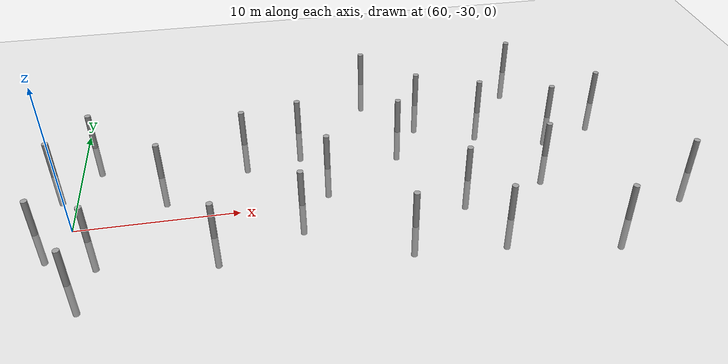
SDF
<sdf version="1.6">
 <world name="default">
  <model name="ground_plane">
   <static>1</static>
   <link name="link">
    <collision name="collision">
     <geometry><plane><normal>0 0 1</normal><size>100 100</size></plane></geometry>
     <surface><friction><ode><mu>100</mu><mu2>50</mu2></ode></friction></surface>
    </collision>
    <visual name="visual">
     <cast_shadows>0</cast_shadows>
     <geometry><plane><normal>0 0 1</normal><size>100 100</size></plane></geometry>
     <material>
      <script><uri>file://media/materials/scripts/gazebo.material</uri><name>Gazebo/Grey</name></script>
     </material>
    </visual>
   </link>
  </model>
  <model name="empty_pillars_10">
   <link name="link">
    <inertial>
     <mass>1</mass>
     <inertia><ixx>0.145833</ixx><ixy>0</ixy><ixz>0</ixz><iyy>0.145833</iyy><iyz>0</iyz><izz>0.125</izz></inertia>
    </inertial>
    <visual name="visual">
     <geometry><cylinder><radius>0.2</radius><length>5</length></cylinder></geometry>
     <material>
      <script><name>Gazebo/Grey</name><uri>file://media/materials/scripts/gazebo.material</uri></script>
      <shader type="vertex"><normal_map>__default__</normal_map></shader>
      <ambient>0.3 0.3 0.3 1</ambient>
      <diffuse>0.7 0.7 0.7 1</diffuse>
      <specular>0.01 0.01 0.01 1</specular>
      <emissive>0 0 0 1</emissive>
     </material>
    </visual>
    <collision name="collision">
     <geometry><cylinder><radius>0.05</radius><length>5</length></cylinder></geometry>
     <surface>
      <friction>
       <ode><mu>1</mu><mu2>1</mu2><fdir1>0 0 0</fdir1><slip1>0</slip1><slip2>0</slip2></ode>
       <torsional>
        <coefficient>1</coefficient>
        <patch_radius>0</patch_radius>
        <surface_radius>0</surface_radius>
        <use_patch_radius>1</use_patch_radius>
        <ode><slip>0</slip></ode>
       </torsional>
      </friction>
      <bounce><restitution_coefficient>0</restitution_coefficient><threshold>1e+06</threshold></bounce>
      <contact>
       <collide_without_contact>0</collide_without_contact>
       <collide_without_contact_bitmask>1</collide_without_contact_bitmask>
       <collide_bitmask>1</collide_bitmask>
       <ode>
        <soft_cfm>0</soft_cfm>
        <soft_erp>0.2</soft_erp>
        <kp>1e+13</kp>
        <kd>1</kd>
        <max_vel>0.01</max_vel>
        <min_depth>0</min_depth>
       </ode>
       <bullet>
        <split_impulse>1</split_impulse>
        <split_impulse_penetration_threshold>-0.01</split_impulse_penetration_threshold>
        <soft_cfm>0</soft_cfm>
        <soft_erp>0.2</soft_erp>
        <kp>1e+13</kp>
        <kd>1</kd>
       </bullet>
      </contact>
     </surface>
    </collision>
   </link>
   <model name="empty_pillar">
    <link name="link">
     <inertial>
      <mass>1</mass>
      <inertia><ixx>0.145833</ixx><ixy>0</ixy><ixz>0</ixz><iyy>0.145833</iyy><iyz>0</iyz><izz>0.125</izz></inertia>
     </inertial>
     <visual name="visual">
      <geometry><cylinder><radius>0.2</radius><length>5</length></cylinder></geometry>
      <material>
       <script><name>Gazebo/Grey</name><uri>file://media/materials/scripts/gazebo.material</uri></script>
       <shader type="vertex"><normal_map>__default__</normal_map></shader>
       <ambient>0.3 0.3 0.3 1</ambient>
       <diffuse>0.7 0.7 0.7 1</diffuse>
       <specular>0.01 0.01 0.01 1</specular>
       <emissive>0 0 0 1</emissive>
      </material>
     </visual>
     <collision name="collision">
      <geometry><cylinder><radius>0.05</radius><length>5</length></cylinder></geometry>
      <surface>
       <friction>
        <ode><mu>1</mu><mu2>1</mu2><fdir1>0 0 0</fdir1><slip1>0</slip1><slip2>0</slip2></ode>
        <torsional>
         <coefficient>1</coefficient>
         <patch_radius>0</patch_radius>
         <surface_radius>0</surface_radius>
         <use_patch_radius>1</use_patch_radius>
         <ode><slip>0</slip></ode>
        </torsional>
       </friction>
       <bounce><restitution_coefficient>0</restitution_coefficient><threshold>1e+06</threshold></bounce>
       <contact>
        <collide_without_contact>0</collide_without_contact>
        <collide_without_contact_bitmask>1</collide_without_contact_bitmask>
        <collide_bitmask>1</collide_bitmask>
        <ode>
         <soft_cfm>0</soft_cfm>
         <soft_erp>0.2</soft_erp>
         <kp>1e+13</kp>
         <kd>1</kd>
         <max_vel>0.01</max_vel>
         <min_depth>0</min_depth>
        </ode>
        <bullet>
         <split_impulse>1</split_impulse>
         <split_impulse_penetration_threshold>-0.01</split_impulse_penetration_threshold>
         <soft_cfm>0</soft_cfm>
         <soft_erp>0.2</soft_erp>
         <kp>1e+13</kp>
         <kd>1</kd>
        </bullet>
       </contact>
      </surface>
     </collision>
    </link>
    <static>0</static>
    <pose>-3.84527 -0.717439 0 0 -0 0</pose>
   </model>
   <model name="empty_pillar_clone">
    <link name="link">
     <inertial>
      <mass>1</mass>
      <inertia><ixx>0.145833</ixx><ixy>0</ixy><ixz>0</ixz><iyy>0.145833</iyy><iyz>0</iyz><izz>0.125</izz></inertia>
     </inertial>
     <visual name="visual">
      <geometry><cylinder><radius>0.2</radius><length>5</length></cylinder></geometry>
      <material>
       <script><name>Gazebo/Grey</name><uri>file://media/materials/scripts/gazebo.material</uri></script>
       <shader type="vertex"><normal_map>__default__</normal_map></shader>
       <ambient>0.3 0.3 0.3 1</ambient>
       <diffuse>0.7 0.7 0.7 1</diffuse>
       <specular>0.01 0.01 0.01 1</specular>
       <emissive>0 0 0 1</emissive>
      </material>
     </visual>
     <collision name="collision">
      <geometry><cylinder><radius>0.05</radius><length>5</length></cylinder></geometry>
      <surface>
       <friction>
        <ode><mu>1</mu><mu2>1</mu2><fdir1>0 0 0</fdir1><slip1>0</slip1><slip2>0</slip2></ode>
        <torsional>
         <coefficient>1</coefficient>
         <patch_radius>0</patch_radius>
         <surface_radius>0</surface_radius>
         <use_patch_radius>1</use_patch_radius>
         <ode><slip>0</slip></ode>
        </torsional>
       </friction>
       <bounce><restitution_coefficient>0</restitution_coefficient><threshold>1e+06</threshold></bounce>
       <contact>
        <collide_without_contact>0</collide_without_contact>
        <collide_without_contact_bitmask>1</collide_without_contact_bitmask>
        <collide_bitmask>1</collide_bitmask>
        <ode>
         <soft_cfm>0</soft_cfm>
         <soft_erp>0.2</soft_erp>
         <kp>1e+13</kp>
         <kd>1</kd>
         <max_vel>0.01</max_vel>
         <min_depth>0</min_depth>
        </ode>
        <bullet>
         <split_impulse>1</split_impulse>
         <split_impulse_penetration_threshold>-0.01</split_impulse_penetration_threshold>
         <soft_cfm>0</soft_cfm>
         <soft_erp>0.2</soft_erp>
         <kp>1e+13</kp>
         <kd>1</kd>
        </bullet>
       </contact>
      </surface>
     </collision>
    </link>
    <static>0</static>
    <pose>1.47843 -4.49529 0 0 -0 0</pose>
   </model>
   <model name="empty_pillar_clone_0">
    <link name="link">
     <inertial>
      <mass>1</mass>
      <inertia><ixx>0.145833</ixx><ixy>0</ixy><ixz>0</ixz><iyy>0.145833</iyy><iyz>0</iyz><izz>0.125</izz></inertia>
     </inertial>
     <visual name="visual">
      <geometry><cylinder><radius>0.2</radius><length>5</length></cylinder></geometry>
      <material>
       <script><name>Gazebo/Grey</name><uri>file://media/materials/scripts/gazebo.material</uri></script>
       <shader type="vertex"><normal_map>__default__</normal_map></shader>
       <ambient>0.3 0.3 0.3 1</ambient>
       <diffuse>0.7 0.7 0.7 1</diffuse>
       <specular>0.01 0.01 0.01 1</specular>
       <emissive>0 0 0 1</emissive>
      </material>
     </visual>
     <collision name="collision">
      <geometry><cylinder><radius>0.05</radius><length>5</length></cylinder></geometry>
      <surface>
       <friction>
        <ode><mu>1</mu><mu2>1</mu2><fdir1>0 0 0</fdir1><slip1>0</slip1><slip2>0</slip2></ode>
        <torsional>
         <coefficient>1</coefficient>
         <patch_radius>0</patch_radius>
         <surface_radius>0</surface_radius>
         <use_patch_radius>1</use_patch_radius>
         <ode><slip>0</slip></ode>
        </torsional>
       </friction>
       <bounce><restitution_coefficient>0</restitution_coefficient><threshold>1e+06</threshold></bounce>
       <contact>
        <collide_without_contact>0</collide_without_contact>
        <collide_without_contact_bitmask>1</collide_without_contact_bitmask>
        <collide_bitmask>1</collide_bitmask>
        <ode>
         <soft_cfm>0</soft_cfm>
         <soft_erp>0.2</soft_erp>
         <kp>1e+13</kp>
         <kd>1</kd>
         <max_vel>0.01</max_vel>
         <min_depth>0</min_depth>
        </ode>
        <bullet>
         <split_impulse>1</split_impulse>
         <split_impulse_penetration_threshold>-0.01</split_impulse_penetration_threshold>
         <soft_cfm>0</soft_cfm>
         <soft_erp>0.2</soft_erp>
         <kp>1e+13</kp>
         <kd>1</kd>
        </bullet>
       </contact>
      </surface>
     </collision>
    </link>
    <static>0</static>
    <pose>10.3453 -7.35986 0 0 -0 0</pose>
   </model>
   <model name="empty_pillar_clone_1">
    <link name="link">
     <inertial>
      <mass>1</mass>
      <inertia><ixx>0.145833</ixx><ixy>0</ixy><ixz>0</ixz><iyy>0.145833</iyy><iyz>0</iyz><izz>0.125</izz></inertia>
     </inertial>
     <visual name="visual">
      <geometry><cylinder><radius>0.2</radius><length>5</length></cylinder></geometry>
      <material>
       <script><name>Gazebo/Grey</name><uri>file://media/materials/scripts/gazebo.material</uri></script>
       <shader type="vertex"><normal_map>__default__</normal_map></shader>
       <ambient>0.3 0.3 0.3 1</ambient>
       <diffuse>0.7 0.7 0.7 1</diffuse>
       <specular>0.01 0.01 0.01 1</specular>
       <emissive>0 0 0 1</emissive>
      </material>
     </visual>
     <collision name="collision">
      <geometry><cylinder><radius>0.05</radius><length>5</length></cylinder></geometry>
      <surface>
       <friction>
        <ode><mu>1</mu><mu2>1</mu2><fdir1>0 0 0</fdir1><slip1>0</slip1><slip2>0</slip2></ode>
        <torsional>
         <coefficient>1</coefficient>
         <patch_radius>0</patch_radius>
         <surface_radius>0</surface_radius>
         <use_patch_radius>1</use_patch_radius>
         <ode><slip>0</slip></ode>
        </torsional>
       </friction>
       <bounce><restitution_coefficient>0</restitution_coefficient><threshold>1e+06</threshold></bounce>
       <contact>
        <collide_without_contact>0</collide_without_contact>
        <collide_without_contact_bitmask>1</collide_without_contact_bitmask>
        <collide_bitmask>1</collide_bitmask>
        <ode>
         <soft_cfm>0</soft_cfm>
         <soft_erp>0.2</soft_erp>
         <kp>1e+13</kp>
         <kd>1</kd>
         <max_vel>0.01</max_vel>
         <min_depth>0</min_depth>
        </ode>
        <bullet>
         <split_impulse>1</split_impulse>
         <split_impulse_penetration_threshold>-0.01</split_impulse_penetration_threshold>
         <soft_cfm>0</soft_cfm>
         <soft_erp>0.2</soft_erp>
         <kp>1e+13</kp>
         <kd>1</kd>
        </bullet>
       </contact>
      </surface>
     </collision>
    </link>
    <static>0</static>
    <pose>8.92248 2.14838 0 0 -0 0</pose>
   </model>
   <model name="empty_pillar_clone_14">
    <link name="link">
     <inertial>
      <mass>1</mass>
      <inertia><ixx>0.145833</ixx><ixy>0</ixy><ixz>0</ixz><iyy>0.145833</iyy><iyz>0</iyz><izz>0.125</izz></inertia>
     </inertial>
     <visual name="visual">
      <geometry><cylinder><radius>0.2</radius><length>5</length></cylinder></geometry>
      <material>
       <script><name>Gazebo/Grey</name><uri>file://media/materials/scripts/gazebo.material</uri></script>
       <shader type="vertex"><normal_map>__default__</normal_map></shader>
       <ambient>0.3 0.3 0.3 1</ambient>
       <diffuse>0.7 0.7 0.7 1</diffuse>
       <specular>0.01 0.01 0.01 1</specular>
       <emissive>0 0 0 1</emissive>
      </material>
     </visual>
     <collision name="collision">
      <geometry><cylinder><radius>0.05</radius><length>5</length></cylinder></geometry>
      <surface>
       <friction>
        <ode><mu>1</mu><mu2>1</mu2><fdir1>0 0 0</fdir1><slip1>0</slip1><slip2>0</slip2></ode>
        <torsional>
         <coefficient>1</coefficient>
         <patch_radius>0</patch_radius>
         <surface_radius>0</surface_radius>
         <use_patch_radius>1</use_patch_radius>
         <ode><slip>0</slip></ode>
        </torsional>
       </friction>
       <bounce><restitution_coefficient>0</restitution_coefficient><threshold>1e+06</threshold></bounce>
       <contact>
        <collide_without_contact>0</collide_without_contact>
        <collide_without_contact_bitmask>1</collide_without_contact_bitmask>
        <collide_bitmask>1</collide_bitmask>
        <ode>
         <soft_cfm>0</soft_cfm>
         <soft_erp>0.2</soft_erp>
         <kp>1e+13</kp>
         <kd>1</kd>
         <max_vel>0.01</max_vel>
         <min_depth>0</min_depth>
        </ode>
        <bullet>
         <split_impulse>1</split_impulse>
         <split_impulse_penetration_threshold>-0.01</split_impulse_penetration_threshold>
         <soft_cfm>0</soft_cfm>
         <soft_erp>0.2</soft_erp>
         <kp>1e+13</kp>
         <kd>1</kd>
        </bullet>
       </contact>
      </surface>
     </collision>
    </link>
    <static>0</static>
    <pose>-14.0146 0.646152 0 0 -0 0</pose>
   </model>
   <model name="empty_pillar_clone_15">
    <link name="link">
     <inertial>
      <mass>1</mass>
      <inertia><ixx>0.145833</ixx><ixy>0</ixy><ixz>0</ixz><iyy>0.145833</iyy><iyz>0</iyz><izz>0.125</izz></inertia>
     </inertial>
     <visual name="visual">
      <geometry><cylinder><radius>0.2</radius><length>5</length></cylinder></geometry>
      <material>
       <script><name>Gazebo/Grey</name><uri>file://media/materials/scripts/gazebo.material</uri></script>
       <shader type="vertex"><normal_map>__default__</normal_map></shader>
       <ambient>0.3 0.3 0.3 1</ambient>
       <diffuse>0.7 0.7 0.7 1</diffuse>
       <specular>0.01 0.01 0.01 1</specular>
       <emissive>0 0 0 1</emissive>
      </material>
     </visual>
     <collision name="collision">
      <geometry><cylinder><radius>0.05</radius><length>5</length></cylinder></geometry>
      <surface>
       <friction>
        <ode><mu>1</mu><mu2>1</mu2><fdir1>0 0 0</fdir1><slip1>0</slip1><slip2>0</slip2></ode>
        <torsional>
         <coefficient>1</coefficient>
         <patch_radius>0</patch_radius>
         <surface_radius>0</surface_radius>
         <use_patch_radius>1</use_patch_radius>
         <ode><slip>0</slip></ode>
        </torsional>
       </friction>
       <bounce><restitution_coefficient>0</restitution_coefficient><threshold>1e+06</threshold></bounce>
       <contact>
        <collide_without_contact>0</collide_without_contact>
        <collide_without_contact_bitmask>1</collide_without_contact_bitmask>
        <collide_bitmask>1</collide_bitmask>
        <ode>
         <soft_cfm>0</soft_cfm>
         <soft_erp>0.2</soft_erp>
         <kp>1e+13</kp>
         <kd>1</kd>
         <max_vel>0.01</max_vel>
         <min_depth>0</min_depth>
        </ode>
        <bullet>
         <split_impulse>1</split_impulse>
         <split_impulse_penetration_threshold>-0.01</split_impulse_penetration_threshold>
         <soft_cfm>0</soft_cfm>
         <soft_erp>0.2</soft_erp>
         <kp>1e+13</kp>
         <kd>1</kd>
        </bullet>
       </contact>
      </surface>
     </collision>
    </link>
    <static>0</static>
    <pose>-9.37193 -3.58732 0 0 -0 0</pose>
   </model>
   <model name="empty_pillar_clone_2">
    <link name="link">
     <inertial>
      <mass>1</mass>
      <inertia><ixx>0.145833</ixx><ixy>0</ixy><ixz>0</ixz><iyy>0.145833</iyy><iyz>0</iyz><izz>0.125</izz></inertia>
     </inertial>
     <visual name="visual">
      <geometry><cylinder><radius>0.2</radius><length>5</length></cylinder></geometry>
      <material>
       <script><name>Gazebo/Grey</name><uri>file://media/materials/scripts/gazebo.material</uri></script>
       <shader type="vertex"><normal_map>__default__</normal_map></shader>
       <ambient>0.3 0.3 0.3 1</ambient>
       <diffuse>0.7 0.7 0.7 1</diffuse>
       <specular>0.01 0.01 0.01 1</specular>
       <emissive>0 0 0 1</emissive>
      </material>
     </visual>
     <collision name="collision">
      <geometry><cylinder><radius>0.05</radius><length>5</length></cylinder></geometry>
      <surface>
       <friction>
        <ode><mu>1</mu><mu2>1</mu2><fdir1>0 0 0</fdir1><slip1>0</slip1><slip2>0</slip2></ode>
        <torsional>
         <coefficient>1</coefficient>
         <patch_radius>0</patch_radius>
         <surface_radius>0</surface_radius>
         <use_patch_radius>1</use_patch_radius>
         <ode><slip>0</slip></ode>
        </torsional>
       </friction>
       <bounce><restitution_coefficient>0</restitution_coefficient><threshold>1e+06</threshold></bounce>
       <contact>
        <collide_without_contact>0</collide_without_contact>
        <collide_without_contact_bitmask>1</collide_without_contact_bitmask>
        <collide_bitmask>1</collide_bitmask>
        <ode>
         <soft_cfm>0</soft_cfm>
         <soft_erp>0.2</soft_erp>
         <kp>1e+13</kp>
         <kd>1</kd>
         <max_vel>0.01</max_vel>
         <min_depth>0</min_depth>
        </ode>
        <bullet>
         <split_impulse>1</split_impulse>
         <split_impulse_penetration_threshold>-0.01</split_impulse_penetration_threshold>
         <soft_cfm>0</soft_cfm>
         <soft_erp>0.2</soft_erp>
         <kp>1e+13</kp>
         <kd>1</kd>
        </bullet>
       </contact>
      </surface>
     </collision>
    </link>
    <static>0</static>
    <pose>6.92427 -1.06221 0 0 -0 0</pose>
   </model>
   <model name="empty_pillar_clone_3">
    <link name="link">
     <inertial>
      <mass>1</mass>
      <inertia><ixx>0.145833</ixx><ixy>0</ixy><ixz>0</ixz><iyy>0.145833</iyy><iyz>0</iyz><izz>0.125</izz></inertia>
     </inertial>
     <visual name="visual">
      <geometry><cylinder><radius>0.2</radius><length>5</length></cylinder></geometry>
      <material>
       <script><name>Gazebo/Grey</name><uri>file://media/materials/scripts/gazebo.material</uri></script>
       <shader type="vertex"><normal_map>__default__</normal_map></shader>
       <ambient>0.3 0.3 0.3 1</ambient>
       <diffuse>0.7 0.7 0.7 1</diffuse>
       <specular>0.01 0.01 0.01 1</specular>
       <emissive>0 0 0 1</emissive>
      </material>
     </visual>
     <collision name="collision">
      <geometry><cylinder><radius>0.05</radius><length>5</length></cylinder></geometry>
      <surface>
       <friction>
        <ode><mu>1</mu><mu2>1</mu2><fdir1>0 0 0</fdir1><slip1>0</slip1><slip2>0</slip2></ode>
        <torsional>
         <coefficient>1</coefficient>
         <patch_radius>0</patch_radius>
         <surface_radius>0</surface_radius>
         <use_patch_radius>1</use_patch_radius>
         <ode><slip>0</slip></ode>
        </torsional>
       </friction>
       <bounce><restitution_coefficient>0</restitution_coefficient><threshold>1e+06</threshold></bounce>
       <contact>
        <collide_without_contact>0</collide_without_contact>
        <collide_without_contact_bitmask>1</collide_without_contact_bitmask>
        <collide_bitmask>1</collide_bitmask>
        <ode>
         <soft_cfm>0</soft_cfm>
         <soft_erp>0.2</soft_erp>
         <kp>1e+13</kp>
         <kd>1</kd>
         <max_vel>0.01</max_vel>
         <min_depth>0</min_depth>
        </ode>
        <bullet>
         <split_impulse>1</split_impulse>
         <split_impulse_penetration_threshold>-0.01</split_impulse_penetration_threshold>
         <soft_cfm>0</soft_cfm>
         <soft_erp>0.2</soft_erp>
         <kp>1e+13</kp>
         <kd>1</kd>
        </bullet>
       </contact>
      </surface>
     </collision>
    </link>
    <static>0</static>
    <pose>5.99316 -11.2211 0 0 -0 0</pose>
   </model>
   <model name="empty_pillar_clone_32">
    <link name="link">
     <inertial>
      <mass>1</mass>
      <inertia><ixx>0.145833</ixx><ixy>0</ixy><ixz>0</ixz><iyy>0.145833</iyy><iyz>0</iyz><izz>0.125</izz></inertia>
     </inertial>
     <visual name="visual">
      <geometry><cylinder><radius>0.2</radius><length>5</length></cylinder></geometry>
      <material>
       <script><name>Gazebo/Grey</name><uri>file://media/materials/scripts/gazebo.material</uri></script>
       <shader type="vertex"><normal_map>__default__</normal_map></shader>
       <ambient>0.3 0.3 0.3 1</ambient>
       <diffuse>0.7 0.7 0.7 1</diffuse>
       <specular>0.01 0.01 0.01 1</specular>
       <emissive>0 0 0 1</emissive>
      </material>
     </visual>
     <collision name="collision">
      <geometry><cylinder><radius>0.05</radius><length>5</length></cylinder></geometry>
      <surface>
       <friction>
        <ode><mu>1</mu><mu2>1</mu2><fdir1>0 0 0</fdir1><slip1>0</slip1><slip2>0</slip2></ode>
        <torsional>
         <coefficient>1</coefficient>
         <patch_radius>0</patch_radius>
         <surface_radius>0</surface_radius>
         <use_patch_radius>1</use_patch_radius>
         <ode><slip>0</slip></ode>
        </torsional>
       </friction>
       <bounce><restitution_coefficient>0</restitution_coefficient><threshold>1e+06</threshold></bounce>
       <contact>
        <collide_without_contact>0</collide_without_contact>
        <collide_without_contact_bitmask>1</collide_without_contact_bitmask>
        <collide_bitmask>1</collide_bitmask>
        <ode>
         <soft_cfm>0</soft_cfm>
         <soft_erp>0.2</soft_erp>
         <kp>1e+13</kp>
         <kd>1</kd>
         <max_vel>0.01</max_vel>
         <min_depth>0</min_depth>
        </ode>
        <bullet>
         <split_impulse>1</split_impulse>
         <split_impulse_penetration_threshold>-0.01</split_impulse_penetration_threshold>
         <soft_cfm>0</soft_cfm>
         <soft_erp>0.2</soft_erp>
         <kp>1e+13</kp>
         <kd>1</kd>
        </bullet>
       </contact>
      </surface>
     </collision>
    </link>
    <static>0</static>
    <pose>21.9854 0.15966 0 0 -0 0</pose>
   </model>
   <model name="empty_pillar_clone_37">
    <link name="link">
     <inertial>
      <mass>1</mass>
      <inertia><ixx>0.145833</ixx><ixy>0</ixy><ixz>0</ixz><iyy>0.145833</iyy><iyz>0</iyz><izz>0.125</izz></inertia>
     </inertial>
     <visual name="visual">
      <geometry><cylinder><radius>0.2</radius><length>5</length></cylinder></geometry>
      <material>
       <script><name>Gazebo/Grey</name><uri>file://media/materials/scripts/gazebo.material</uri></script>
       <shader type="vertex"><normal_map>__default__</normal_map></shader>
       <ambient>0.3 0.3 0.3 1</ambient>
       <diffuse>0.7 0.7 0.7 1</diffuse>
       <specular>0.01 0.01 0.01 1</specular>
       <emissive>0 0 0 1</emissive>
      </material>
     </visual>
     <collision name="collision">
      <geometry><cylinder><radius>0.05</radius><length>5</length></cylinder></geometry>
      <surface>
       <friction>
        <ode><mu>1</mu><mu2>1</mu2><fdir1>0 0 0</fdir1><slip1>0</slip1><slip2>0</slip2></ode>
        <torsional>
         <coefficient>1</coefficient>
         <patch_radius>0</patch_radius>
         <surface_radius>0</surface_radius>
         <use_patch_radius>1</use_patch_radius>
         <ode><slip>0</slip></ode>
        </torsional>
       </friction>
       <bounce><restitution_coefficient>0</restitution_coefficient><threshold>1e+06</threshold></bounce>
       <contact>
        <collide_without_contact>0</collide_without_contact>
        <collide_without_contact_bitmask>1</collide_without_contact_bitmask>
        <collide_bitmask>1</collide_bitmask>
        <ode>
         <soft_cfm>0</soft_cfm>
         <soft_erp>0.2</soft_erp>
         <kp>1e+13</kp>
         <kd>1</kd>
         <max_vel>0.01</max_vel>
         <min_depth>0</min_depth>
        </ode>
        <bullet>
         <split_impulse>1</split_impulse>
         <split_impulse_penetration_threshold>-0.01</split_impulse_penetration_threshold>
         <soft_cfm>0</soft_cfm>
         <soft_erp>0.2</soft_erp>
         <kp>1e+13</kp>
         <kd>1</kd>
        </bullet>
       </contact>
      </surface>
     </collision>
    </link>
    <static>0</static>
    <pose>-16.6035 -7.98282 0 0 -0 0</pose>
   </model>
   <model name="empty_pillar_clone_38">
    <link name="link">
     <inertial>
      <mass>1</mass>
      <inertia><ixx>0.145833</ixx><ixy>0</ixy><ixz>0</ixz><iyy>0.145833</iyy><iyz>0</iyz><izz>0.125</izz></inertia>
     </inertial>
     <visual name="visual">
      <geometry><cylinder><radius>0.2</radius><length>5</length></cylinder></geometry>
      <material>
       <script><name>Gazebo/Grey</name><uri>file://media/materials/scripts/gazebo.material</uri></script>
       <shader type="vertex"><normal_map>__default__</normal_map></shader>
       <ambient>0.3 0.3 0.3 1</ambient>
       <diffuse>0.7 0.7 0.7 1</diffuse>
       <specular>0.01 0.01 0.01 1</specular>
       <emissive>0 0 0 1</emissive>
      </material>
     </visual>
     <collision name="collision">
      <geometry><cylinder><radius>0.05</radius><length>5</length></cylinder></geometry>
      <surface>
       <friction>
        <ode><mu>1</mu><mu2>1</mu2><fdir1>0 0 0</fdir1><slip1>0</slip1><slip2>0</slip2></ode>
        <torsional>
         <coefficient>1</coefficient>
         <patch_radius>0</patch_radius>
         <surface_radius>0</surface_radius>
         <use_patch_radius>1</use_patch_radius>
         <ode><slip>0</slip></ode>
        </torsional>
       </friction>
       <bounce><restitution_coefficient>0</restitution_coefficient><threshold>1e+06</threshold></bounce>
       <contact>
        <collide_without_contact>0</collide_without_contact>
        <collide_without_contact_bitmask>1</collide_without_contact_bitmask>
        <collide_bitmask>1</collide_bitmask>
        <ode>
         <soft_cfm>0</soft_cfm>
         <soft_erp>0.2</soft_erp>
         <kp>1e+13</kp>
         <kd>1</kd>
         <max_vel>0.01</max_vel>
         <min_depth>0</min_depth>
        </ode>
        <bullet>
         <split_impulse>1</split_impulse>
         <split_impulse_penetration_threshold>-0.01</split_impulse_penetration_threshold>
         <soft_cfm>0</soft_cfm>
         <soft_erp>0.2</soft_erp>
         <kp>1e+13</kp>
         <kd>1</kd>
        </bullet>
       </contact>
      </surface>
     </collision>
    </link>
    <static>0</static>
    <pose>-16.33 -2.21607 0 0 -0 0</pose>
   </model>
   <model name="empty_pillar_clone_39">
    <link name="link">
     <inertial>
      <mass>1</mass>
      <inertia><ixx>0.145833</ixx><ixy>0</ixy><ixz>0</ixz><iyy>0.145833</iyy><iyz>0</iyz><izz>0.125</izz></inertia>
     </inertial>
     <visual name="visual">
      <geometry><cylinder><radius>0.2</radius><length>5</length></cylinder></geometry>
      <material>
       <script><name>Gazebo/Grey</name><uri>file://media/materials/scripts/gazebo.material</uri></script>
       <shader type="vertex"><normal_map>__default__</normal_map></shader>
       <ambient>0.3 0.3 0.3 1</ambient>
       <diffuse>0.7 0.7 0.7 1</diffuse>
       <specular>0.01 0.01 0.01 1</specular>
       <emissive>0 0 0 1</emissive>
      </material>
     </visual>
     <collision name="collision">
      <geometry><cylinder><radius>0.05</radius><length>5</length></cylinder></geometry>
      <surface>
       <friction>
        <ode><mu>1</mu><mu2>1</mu2><fdir1>0 0 0</fdir1><slip1>0</slip1><slip2>0</slip2></ode>
        <torsional>
         <coefficient>1</coefficient>
         <patch_radius>0</patch_radius>
         <surface_radius>0</surface_radius>
         <use_patch_radius>1</use_patch_radius>
         <ode><slip>0</slip></ode>
        </torsional>
       </friction>
       <bounce><restitution_coefficient>0</restitution_coefficient><threshold>1e+06</threshold></bounce>
       <contact>
        <collide_without_contact>0</collide_without_contact>
        <collide_without_contact_bitmask>1</collide_without_contact_bitmask>
        <collide_bitmask>1</collide_bitmask>
        <ode>
         <soft_cfm>0</soft_cfm>
         <soft_erp>0.2</soft_erp>
         <kp>1e+13</kp>
         <kd>1</kd>
         <max_vel>0.01</max_vel>
         <min_depth>0</min_depth>
        </ode>
        <bullet>
         <split_impulse>1</split_impulse>
         <split_impulse_penetration_threshold>-0.01</split_impulse_penetration_threshold>
         <soft_cfm>0</soft_cfm>
         <soft_erp>0.2</soft_erp>
         <kp>1e+13</kp>
         <kd>1</kd>
        </bullet>
       </contact>
      </surface>
     </collision>
    </link>
    <static>0</static>
    <pose>-13.4361 -9.12638 0 0 -0 0</pose>
   </model>
   <model name="empty_pillar_clone_41">
    <link name="link">
     <inertial>
      <mass>1</mass>
      <inertia><ixx>0.145833</ixx><ixy>0</ixy><ixz>0</ixz><iyy>0.145833</iyy><iyz>0</iyz><izz>0.125</izz></inertia>
     </inertial>
     <visual name="visual">
      <geometry><cylinder><radius>0.2</radius><length>5</length></cylinder></geometry>
      <material>
       <script><name>Gazebo/Grey</name><uri>file://media/materials/scripts/gazebo.material</uri></script>
       <shader type="vertex"><normal_map>__default__</normal_map></shader>
       <ambient>0.3 0.3 0.3 1</ambient>
       <diffuse>0.7 0.7 0.7 1</diffuse>
       <specular>0.01 0.01 0.01 1</specular>
       <emissive>0 0 0 1</emissive>
      </material>
     </visual>
     <collision name="collision">
      <geometry><cylinder><radius>0.05</radius><length>5</length></cylinder></geometry>
      <surface>
       <friction>
        <ode><mu>1</mu><mu2>1</mu2><fdir1>0 0 0</fdir1><slip1>0</slip1><slip2>0</slip2></ode>
        <torsional>
         <coefficient>1</coefficient>
         <patch_radius>0</patch_radius>
         <surface_radius>0</surface_radius>
         <use_patch_radius>1</use_patch_radius>
         <ode><slip>0</slip></ode>
        </torsional>
       </friction>
       <bounce><restitution_coefficient>0</restitution_coefficient><threshold>1e+06</threshold></bounce>
       <contact>
        <collide_without_contact>0</collide_without_contact>
        <collide_without_contact_bitmask>1</collide_without_contact_bitmask>
        <collide_bitmask>1</collide_bitmask>
        <ode>
         <soft_cfm>0</soft_cfm>
         <soft_erp>0.2</soft_erp>
         <kp>1e+13</kp>
         <kd>1</kd>
         <max_vel>0.01</max_vel>
         <min_depth>0</min_depth>
        </ode>
        <bullet>
         <split_impulse>1</split_impulse>
         <split_impulse_penetration_threshold>-0.01</split_impulse_penetration_threshold>
         <soft_cfm>0</soft_cfm>
         <soft_erp>0.2</soft_erp>
         <kp>1e+13</kp>
         <kd>1</kd>
        </bullet>
       </contact>
      </surface>
     </collision>
    </link>
    <static>0</static>
    <pose>-14.1448 -12.6326 0 0 -0 0</pose>
   </model>
   <model name="empty_pillar_clone_47">
    <link name="link">
     <inertial>
      <mass>1</mass>
      <inertia><ixx>0.145833</ixx><ixy>0</ixy><ixz>0</ixz><iyy>0.145833</iyy><iyz>0</iyz><izz>0.125</izz></inertia>
     </inertial>
     <visual name="visual">
      <geometry><cylinder><radius>0.2</radius><length>5</length></cylinder></geometry>
      <material>
       <script><name>Gazebo/Grey</name><uri>file://media/materials/scripts/gazebo.material</uri></script>
       <shader type="vertex"><normal_map>__default__</normal_map></shader>
       <ambient>0.3 0.3 0.3 1</ambient>
       <diffuse>0.7 0.7 0.7 1</diffuse>
       <specular>0.01 0.01 0.01 1</specular>
       <emissive>0 0 0 1</emissive>
      </material>
     </visual>
     <collision name="collision">
      <geometry><cylinder><radius>0.05</radius><length>5</length></cylinder></geometry>
      <surface>
       <friction>
        <ode><mu>1</mu><mu2>1</mu2><fdir1>0 0 0</fdir1><slip1>0</slip1><slip2>0</slip2></ode>
        <torsional>
         <coefficient>1</coefficient>
         <patch_radius>0</patch_radius>
         <surface_radius>0</surface_radius>
         <use_patch_radius>1</use_patch_radius>
         <ode><slip>0</slip></ode>
        </torsional>
       </friction>
       <bounce><restitution_coefficient>0</restitution_coefficient><threshold>1e+06</threshold></bounce>
       <contact>
        <collide_without_contact>0</collide_without_contact>
        <collide_without_contact_bitmask>1</collide_without_contact_bitmask>
        <collide_bitmask>1</collide_bitmask>
        <ode>
         <soft_cfm>0</soft_cfm>
         <soft_erp>0.2</soft_erp>
         <kp>1e+13</kp>
         <kd>1</kd>
         <max_vel>0.01</max_vel>
         <min_depth>0</min_depth>
        </ode>
        <bullet>
         <split_impulse>1</split_impulse>
         <split_impulse_penetration_threshold>-0.01</split_impulse_penetration_threshold>
         <soft_cfm>0</soft_cfm>
         <soft_erp>0.2</soft_erp>
         <kp>1e+13</kp>
         <kd>1</kd>
        </bullet>
       </contact>
      </surface>
     </collision>
    </link>
    <static>0</static>
    <pose>-0.569433 -7.97346 0 0 -0 0</pose>
   </model>
   <model name="empty_pillar_clone_48">
    <link name="link">
     <inertial>
      <mass>1</mass>
      <inertia><ixx>0.145833</ixx><ixy>0</ixy><ixz>0</ixz><iyy>0.145833</iyy><iyz>0</iyz><izz>0.125</izz></inertia>
     </inertial>
     <visual name="visual">
      <geometry><cylinder><radius>0.2</radius><length>5</length></cylinder></geometry>
      <material>
       <script><name>Gazebo/Grey</name><uri>file://media/materials/scripts/gazebo.material</uri></script>
       <shader type="vertex"><normal_map>__default__</normal_map></shader>
       <ambient>0.3 0.3 0.3 1</ambient>
       <diffuse>0.7 0.7 0.7 1</diffuse>
       <specular>0.01 0.01 0.01 1</specular>
       <emissive>0 0 0 1</emissive>
      </material>
     </visual>
     <collision name="collision">
      <geometry><cylinder><radius>0.05</radius><length>5</length></cylinder></geometry>
      <surface>
       <friction>
        <ode><mu>1</mu><mu2>1</mu2><fdir1>0 0 0</fdir1><slip1>0</slip1><slip2>0</slip2></ode>
        <torsional>
         <coefficient>1</coefficient>
         <patch_radius>0</patch_radius>
         <surface_radius>0</surface_radius>
         <use_patch_radius>1</use_patch_radius>
         <ode><slip>0</slip></ode>
        </torsional>
       </friction>
       <bounce><restitution_coefficient>0</restitution_coefficient><threshold>1e+06</threshold></bounce>
       <contact>
        <collide_without_contact>0</collide_without_contact>
        <collide_without_contact_bitmask>1</collide_without_contact_bitmask>
        <collide_bitmask>1</collide_bitmask>
        <ode>
         <soft_cfm>0</soft_cfm>
         <soft_erp>0.2</soft_erp>
         <kp>1e+13</kp>
         <kd>1</kd>
         <max_vel>0.01</max_vel>
         <min_depth>0</min_depth>
        </ode>
        <bullet>
         <split_impulse>1</split_impulse>
         <split_impulse_penetration_threshold>-0.01</split_impulse_penetration_threshold>
         <soft_cfm>0</soft_cfm>
         <soft_erp>0.2</soft_erp>
         <kp>1e+13</kp>
         <kd>1</kd>
        </bullet>
       </contact>
      </surface>
     </collision>
    </link>
    <static>0</static>
    <pose>16.2633 -5.65052 0 0 -0 0</pose>
   </model>
   <model name="empty_pillar_clone_5">
    <link name="link">
     <inertial>
      <mass>1</mass>
      <inertia><ixx>0.145833</ixx><ixy>0</ixy><ixz>0</ixz><iyy>0.145833</iyy><iyz>0</iyz><izz>0.125</izz></inertia>
     </inertial>
     <visual name="visual">
      <geometry><cylinder><radius>0.2</radius><length>5</length></cylinder></geometry>
      <material>
       <script><name>Gazebo/Grey</name><uri>file://media/materials/scripts/gazebo.material</uri></script>
       <shader type="vertex"><normal_map>__default__</normal_map></shader>
       <ambient>0.3 0.3 0.3 1</ambient>
       <diffuse>0.7 0.7 0.7 1</diffuse>
       <specular>0.01 0.01 0.01 1</specular>
       <emissive>0 0 0 1</emissive>
      </material>
     </visual>
     <collision name="collision">
      <geometry><cylinder><radius>0.05</radius><length>5</length></cylinder></geometry>
      <surface>
       <friction>
        <ode><mu>1</mu><mu2>1</mu2><fdir1>0 0 0</fdir1><slip1>0</slip1><slip2>0</slip2></ode>
        <torsional>
         <coefficient>1</coefficient>
         <patch_radius>0</patch_radius>
         <surface_radius>0</surface_radius>
         <use_patch_radius>1</use_patch_radius>
         <ode><slip>0</slip></ode>
        </torsional>
       </friction>
       <bounce><restitution_coefficient>0</restitution_coefficient><threshold>1e+06</threshold></bounce>
       <contact>
        <collide_without_contact>0</collide_without_contact>
        <collide_without_contact_bitmask>1</collide_without_contact_bitmask>
        <collide_bitmask>1</collide_bitmask>
        <ode>
         <soft_cfm>0</soft_cfm>
         <soft_erp>0.2</soft_erp>
         <kp>1e+13</kp>
         <kd>1</kd>
         <max_vel>0.01</max_vel>
         <min_depth>0</min_depth>
        </ode>
        <bullet>
         <split_impulse>1</split_impulse>
         <split_impulse_penetration_threshold>-0.01</split_impulse_penetration_threshold>
         <soft_cfm>0</soft_cfm>
         <soft_erp>0.2</soft_erp>
         <kp>1e+13</kp>
         <kd>1</kd>
        </bullet>
       </contact>
      </surface>
     </collision>
    </link>
    <static>0</static>
    <pose>-6.03595 -10.0932 0 0 -0 0</pose>
   </model>
   <model name="empty_pillar_clone_51">
    <link name="link">
     <inertial>
      <mass>1</mass>
      <inertia><ixx>0.145833</ixx><ixy>0</ixy><ixz>0</ixz><iyy>0.145833</iyy><iyz>0</iyz><izz>0.125</izz></inertia>
     </inertial>
     <visual name="visual">
      <geometry><cylinder><radius>0.2</radius><length>5</length></cylinder></geometry>
      <material>
       <script><name>Gazebo/Grey</name><uri>file://media/materials/scripts/gazebo.material</uri></script>
       <shader type="vertex"><normal_map>__default__</normal_map></shader>
       <ambient>0.3 0.3 0.3 1</ambient>
       <diffuse>0.7 0.7 0.7 1</diffuse>
       <specular>0.01 0.01 0.01 1</specular>
       <emissive>0 0 0 1</emissive>
      </material>
     </visual>
     <collision name="collision">
      <geometry><cylinder><radius>0.05</radius><length>5</length></cylinder></geometry>
      <surface>
       <friction>
        <ode><mu>1</mu><mu2>1</mu2><fdir1>0 0 0</fdir1><slip1>0</slip1><slip2>0</slip2></ode>
        <torsional>
         <coefficient>1</coefficient>
         <patch_radius>0</patch_radius>
         <surface_radius>0</surface_radius>
         <use_patch_radius>1</use_patch_radius>
         <ode><slip>0</slip></ode>
        </torsional>
       </friction>
       <bounce><restitution_coefficient>0</restitution_coefficient><threshold>1e+06</threshold></bounce>
       <contact>
        <collide_without_contact>0</collide_without_contact>
        <collide_without_contact_bitmask>1</collide_without_contact_bitmask>
        <collide_bitmask>1</collide_bitmask>
        <ode>
         <soft_cfm>0</soft_cfm>
         <soft_erp>0.2</soft_erp>
         <kp>1e+13</kp>
         <kd>1</kd>
         <max_vel>0.01</max_vel>
         <min_depth>0</min_depth>
        </ode>
        <bullet>
         <split_impulse>1</split_impulse>
         <split_impulse_penetration_threshold>-0.01</split_impulse_penetration_threshold>
         <soft_cfm>0</soft_cfm>
         <soft_erp>0.2</soft_erp>
         <kp>1e+13</kp>
         <kd>1</kd>
        </bullet>
       </contact>
      </surface>
     </collision>
    </link>
    <static>0</static>
    <pose>11.8943 -11.5792 0 0 -0 0</pose>
   </model>
   <model name="empty_pillar_clone_55">
    <link name="link">
     <inertial>
      <mass>1</mass>
      <inertia><ixx>0.145833</ixx><ixy>0</ixy><ixz>0</ixz><iyy>0.145833</iyy><iyz>0</iyz><izz>0.125</izz></inertia>
     </inertial>
     <visual name="visual">
      <geometry><cylinder><radius>0.2</radius><length>5</length></cylinder></geometry>
      <material>
       <script><name>Gazebo/Grey</name><uri>file://media/materials/scripts/gazebo.material</uri></script>
       <shader type="vertex"><normal_map>__default__</normal_map></shader>
       <ambient>0.3 0.3 0.3 1</ambient>
       <diffuse>0.7 0.7 0.7 1</diffuse>
       <specular>0.01 0.01 0.01 1</specular>
       <emissive>0 0 0 1</emissive>
      </material>
     </visual>
     <collision name="collision">
      <geometry><cylinder><radius>0.05</radius><length>5</length></cylinder></geometry>
      <surface>
       <friction>
        <ode><mu>1</mu><mu2>1</mu2><fdir1>0 0 0</fdir1><slip1>0</slip1><slip2>0</slip2></ode>
        <torsional>
         <coefficient>1</coefficient>
         <patch_radius>0</patch_radius>
         <surface_radius>0</surface_radius>
         <use_patch_radius>1</use_patch_radius>
         <ode><slip>0</slip></ode>
        </torsional>
       </friction>
       <bounce><restitution_coefficient>0</restitution_coefficient><threshold>1e+06</threshold></bounce>
       <contact>
        <collide_without_contact>0</collide_without_contact>
        <collide_without_contact_bitmask>1</collide_without_contact_bitmask>
        <collide_bitmask>1</collide_bitmask>
        <ode>
         <soft_cfm>0</soft_cfm>
         <soft_erp>0.2</soft_erp>
         <kp>1e+13</kp>
         <kd>1</kd>
         <max_vel>0.01</max_vel>
         <min_depth>0</min_depth>
        </ode>
        <bullet>
         <split_impulse>1</split_impulse>
         <split_impulse_penetration_threshold>-0.01</split_impulse_penetration_threshold>
         <soft_cfm>0</soft_cfm>
         <soft_erp>0.2</soft_erp>
         <kp>1e+13</kp>
         <kd>1</kd>
        </bullet>
       </contact>
      </surface>
     </collision>
    </link>
    <static>0</static>
    <pose>13.2247 0.382706 0 0 -0 0</pose>
   </model>
   <model name="empty_pillar_clone_57">
    <link name="link">
     <inertial>
      <mass>1</mass>
      <inertia><ixx>0.145833</ixx><ixy>0</ixy><ixz>0</ixz><iyy>0.145833</iyy><iyz>0</iyz><izz>0.125</izz></inertia>
     </inertial>
     <visual name="visual">
      <geometry><cylinder><radius>0.2</radius><length>5</length></cylinder></geometry>
      <material>
       <script><name>Gazebo/Grey</name><uri>file://media/materials/scripts/gazebo.material</uri></script>
       <shader type="vertex"><normal_map>__default__</normal_map></shader>
       <ambient>0.3 0.3 0.3 1</ambient>
       <diffuse>0.7 0.7 0.7 1</diffuse>
       <specular>0.01 0.01 0.01 1</specular>
       <emissive>0 0 0 1</emissive>
      </material>
     </visual>
     <collision name="collision">
      <geometry><cylinder><radius>0.05</radius><length>5</length></cylinder></geometry>
      <surface>
       <friction>
        <ode><mu>1</mu><mu2>1</mu2><fdir1>0 0 0</fdir1><slip1>0</slip1><slip2>0</slip2></ode>
        <torsional>
         <coefficient>1</coefficient>
         <patch_radius>0</patch_radius>
         <surface_radius>0</surface_radius>
         <use_patch_radius>1</use_patch_radius>
         <ode><slip>0</slip></ode>
        </torsional>
       </friction>
       <bounce><restitution_coefficient>0</restitution_coefficient><threshold>1e+06</threshold></bounce>
       <contact>
        <collide_without_contact>0</collide_without_contact>
        <collide_without_contact_bitmask>1</collide_without_contact_bitmask>
        <collide_bitmask>1</collide_bitmask>
        <ode>
         <soft_cfm>0</soft_cfm>
         <soft_erp>0.2</soft_erp>
         <kp>1e+13</kp>
         <kd>1</kd>
         <max_vel>0.01</max_vel>
         <min_depth>0</min_depth>
        </ode>
        <bullet>
         <split_impulse>1</split_impulse>
         <split_impulse_penetration_threshold>-0.01</split_impulse_penetration_threshold>
         <soft_cfm>0</soft_cfm>
         <soft_erp>0.2</soft_erp>
         <kp>1e+13</kp>
         <kd>1</kd>
        </bullet>
       </contact>
      </surface>
     </collision>
    </link>
    <static>0</static>
    <pose>5.4355 5.86468 0 0 -0 0</pose>
   </model>
   <model name="empty_pillar_clone_6">
    <link name="link">
     <inertial>
      <mass>1</mass>
      <inertia><ixx>0.145833</ixx><ixy>0</ixy><ixz>0</ixz><iyy>0.145833</iyy><iyz>0</iyz><izz>0.125</izz></inertia>
     </inertial>
     <visual name="visual">
      <geometry><cylinder><radius>0.2</radius><length>5</length></cylinder></geometry>
      <material>
       <script><name>Gazebo/Grey</name><uri>file://media/materials/scripts/gazebo.material</uri></script>
       <shader type="vertex"><normal_map>__default__</normal_map></shader>
       <ambient>0.3 0.3 0.3 1</ambient>
       <diffuse>0.7 0.7 0.7 1</diffuse>
       <specular>0.01 0.01 0.01 1</specular>
       <emissive>0 0 0 1</emissive>
      </material>
     </visual>
     <collision name="collision">
      <geometry><cylinder><radius>0.05</radius><length>5</length></cylinder></geometry>
      <surface>
       <friction>
        <ode><mu>1</mu><mu2>1</mu2><fdir1>0 0 0</fdir1><slip1>0</slip1><slip2>0</slip2></ode>
        <torsional>
         <coefficient>1</coefficient>
         <patch_radius>0</patch_radius>
         <surface_radius>0</surface_radius>
         <use_patch_radius>1</use_patch_radius>
         <ode><slip>0</slip></ode>
        </torsional>
       </friction>
       <bounce><restitution_coefficient>0</restitution_coefficient><threshold>1e+06</threshold></bounce>
       <contact>
        <collide_without_contact>0</collide_without_contact>
        <collide_without_contact_bitmask>1</collide_without_contact_bitmask>
        <collide_bitmask>1</collide_bitmask>
        <ode>
         <soft_cfm>0</soft_cfm>
         <soft_erp>0.2</soft_erp>
         <kp>1e+13</kp>
         <kd>1</kd>
         <max_vel>0.01</max_vel>
         <min_depth>0</min_depth>
        </ode>
        <bullet>
         <split_impulse>1</split_impulse>
         <split_impulse_penetration_threshold>-0.01</split_impulse_penetration_threshold>
         <soft_cfm>0</soft_cfm>
         <soft_erp>0.2</soft_erp>
         <kp>1e+13</kp>
         <kd>1</kd>
        </bullet>
       </contact>
      </surface>
     </collision>
    </link>
    <static>0</static>
    <pose>24.9156 -9.11394 0 0 -0 0</pose>
   </model>
   <model name="empty_pillar_clone_7">
    <link name="link">
     <inertial>
      <mass>1</mass>
      <inertia><ixx>0.145833</ixx><ixy>0</ixy><ixz>0</ixz><iyy>0.145833</iyy><iyz>0</iyz><izz>0.125</izz></inertia>
     </inertial>
     <visual name="visual">
      <geometry><cylinder><radius>0.2</radius><length>5</length></cylinder></geometry>
      <material>
       <script><name>Gazebo/Grey</name><uri>file://media/materials/scripts/gazebo.material</uri></script>
       <shader type="vertex"><normal_map>__default__</normal_map></shader>
       <ambient>0.3 0.3 0.3 1</ambient>
       <diffuse>0.7 0.7 0.7 1</diffuse>
       <specular>0.01 0.01 0.01 1</specular>
       <emissive>0 0 0 1</emissive>
      </material>
     </visual>
     <collision name="collision">
      <geometry><cylinder><radius>0.05</radius><length>5</length></cylinder></geometry>
      <surface>
       <friction>
        <ode><mu>1</mu><mu2>1</mu2><fdir1>0 0 0</fdir1><slip1>0</slip1><slip2>0</slip2></ode>
        <torsional>
         <coefficient>1</coefficient>
         <patch_radius>0</patch_radius>
         <surface_radius>0</surface_radius>
         <use_patch_radius>1</use_patch_radius>
         <ode><slip>0</slip></ode>
        </torsional>
       </friction>
       <bounce><restitution_coefficient>0</restitution_coefficient><threshold>1e+06</threshold></bounce>
       <contact>
        <collide_without_contact>0</collide_without_contact>
        <collide_without_contact_bitmask>1</collide_without_contact_bitmask>
        <collide_bitmask>1</collide_bitmask>
        <ode>
         <soft_cfm>0</soft_cfm>
         <soft_erp>0.2</soft_erp>
         <kp>1e+13</kp>
         <kd>1</kd>
         <max_vel>0.01</max_vel>
         <min_depth>0</min_depth>
        </ode>
        <bullet>
         <split_impulse>1</split_impulse>
         <split_impulse_penetration_threshold>-0.01</split_impulse_penetration_threshold>
         <soft_cfm>0</soft_cfm>
         <soft_erp>0.2</soft_erp>
         <kp>1e+13</kp>
         <kd>1</kd>
        </bullet>
       </contact>
      </surface>
     </collision>
    </link>
    <static>0</static>
    <pose>16.9242 5.74519 0 0 -0 0</pose>
   </model>
   <model name="empty_pillar_clone_8">
    <link name="link">
     <inertial>
      <mass>1</mass>
      <inertia><ixx>0.145833</ixx><ixy>0</ixy><ixz>0</ixz><iyy>0.145833</iyy><iyz>0</iyz><izz>0.125</izz></inertia>
     </inertial>
     <visual name="visual">
      <geometry><cylinder><radius>0.2</radius><length>5</length></cylinder></geometry>
      <material>
       <script><name>Gazebo/Grey</name><uri>file://media/materials/scripts/gazebo.material</uri></script>
       <shader type="vertex"><normal_map>__default__</normal_map></shader>
       <ambient>0.3 0.3 0.3 1</ambient>
       <diffuse>0.7 0.7 0.7 1</diffuse>
       <specular>0.01 0.01 0.01 1</specular>
       <emissive>0 0 0 1</emissive>
      </material>
     </visual>
     <collision name="collision">
      <geometry><cylinder><radius>0.05</radius><length>5</length></cylinder></geometry>
      <surface>
       <friction>
        <ode><mu>1</mu><mu2>1</mu2><fdir1>0 0 0</fdir1><slip1>0</slip1><slip2>0</slip2></ode>
        <torsional>
         <coefficient>1</coefficient>
         <patch_radius>0</patch_radius>
         <surface_radius>0</surface_radius>
         <use_patch_radius>1</use_patch_radius>
         <ode><slip>0</slip></ode>
        </torsional>
       </friction>
       <bounce><restitution_coefficient>0</restitution_coefficient><threshold>1e+06</threshold></bounce>
       <contact>
        <collide_without_contact>0</collide_without_contact>
        <collide_without_contact_bitmask>1</collide_without_contact_bitmask>
        <collide_bitmask>1</collide_bitmask>
        <ode>
         <soft_cfm>0</soft_cfm>
         <soft_erp>0.2</soft_erp>
         <kp>1e+13</kp>
         <kd>1</kd>
         <max_vel>0.01</max_vel>
         <min_depth>0</min_depth>
        </ode>
        <bullet>
         <split_impulse>1</split_impulse>
         <split_impulse_penetration_threshold>-0.01</split_impulse_penetration_threshold>
         <soft_cfm>0</soft_cfm>
         <soft_erp>0.2</soft_erp>
         <kp>1e+13</kp>
         <kd>1</kd>
        </bullet>
       </contact>
      </surface>
     </collision>
    </link>
    <static>0</static>
    <pose>18.9854 -12.8403 0 0 -0 0</pose>
   </model>
   <model name="empty_pillar_clone_9">
    <link name="link">
     <inertial>
      <mass>1</mass>
      <inertia><ixx>0.145833</ixx><ixy>0</ixy><ixz>0</ixz><iyy>0.145833</iyy><iyz>0</iyz><izz>0.125</izz></inertia>
     </inertial>
     <visual name="visual">
      <geometry><cylinder><radius>0.2</radius><length>5</length></cylinder></geometry>
      <material>
       <script><name>Gazebo/Grey</name><uri>file://media/materials/scripts/gazebo.material</uri></script>
       <shader type="vertex"><normal_map>__default__</normal_map></shader>
       <ambient>0.3 0.3 0.3 1</ambient>
       <diffuse>0.7 0.7 0.7 1</diffuse>
       <specular>0.01 0.01 0.01 1</specular>
       <emissive>0 0 0 1</emissive>
      </material>
     </visual>
     <collision name="collision">
      <geometry><cylinder><radius>0.05</radius><length>5</length></cylinder></geometry>
      <surface>
       <friction>
        <ode><mu>1</mu><mu2>1</mu2><fdir1>0 0 0</fdir1><slip1>0</slip1><slip2>0</slip2></ode>
        <torsional>
         <coefficient>1</coefficient>
         <patch_radius>0</patch_radius>
         <surface_radius>0</surface_radius>
         <use_patch_radius>1</use_patch_radius>
         <ode><slip>0</slip></ode>
        </torsional>
       </friction>
       <bounce><restitution_coefficient>0</restitution_coefficient><threshold>1e+06</threshold></bounce>
       <contact>
        <collide_without_contact>0</collide_without_contact>
        <collide_without_contact_bitmask>1</collide_without_contact_bitmask>
        <collide_bitmask>1</collide_bitmask>
        <ode>
         <soft_cfm>0</soft_cfm>
         <soft_erp>0.2</soft_erp>
         <kp>1e+13</kp>
         <kd>1</kd>
         <max_vel>0.01</max_vel>
         <min_depth>0</min_depth>
        </ode>
        <bullet>
         <split_impulse>1</split_impulse>
         <split_impulse_penetration_threshold>-0.01</split_impulse_penetration_threshold>
         <soft_cfm>0</soft_cfm>
         <soft_erp>0.2</soft_erp>
         <kp>1e+13</kp>
         <kd>1</kd>
        </bullet>
       </contact>
      </surface>
     </collision>
    </link>
    <static>0</static>
    <pose>18.1111 -1.13899 0 0 -0 0</pose>
   </model>
   <static>0</static>
   <pose>74.3997 -21.7718 0 0 -0 0</pose>
  </model>
 </world>
</sdf>
